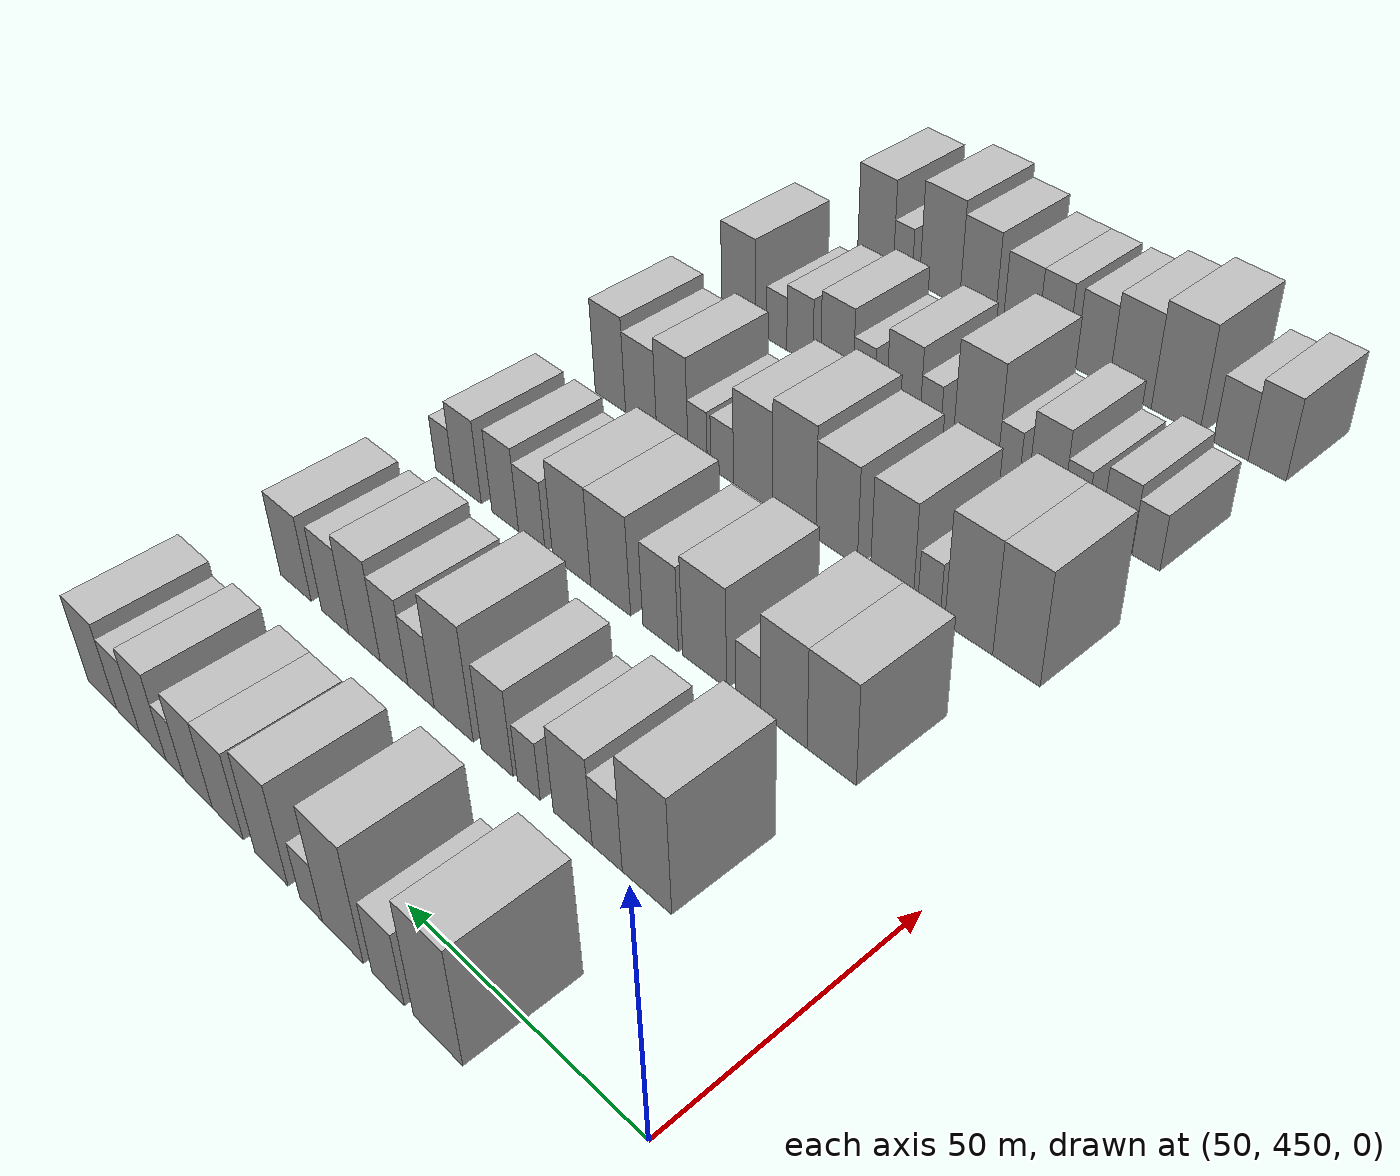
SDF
<sdf version="1.6">
 <world name="default">
  <model name="building_116">
   <static>1</static>
   <pose>50.0000 479.8017 0 0.000000 0.000000 0.000000</pose>
   <link name="link">
    <pose>0 0 12.00 0 0 0</pose>
    <collision name="collision"><geometry><box><size>20.0000 10.5938 24.0000</size></box></geometry></collision>
    <visual name="visual">
     <cast_shadows>0</cast_shadows>
     <geometry><box><size>20.0000 10.5938 24.0000</size></box></geometry>
     <material>
      <script>
       <uri>model://HANNAS_wall/materials/scripts</uri>
       <uri>model://HANNAS_wall/materials/textures</uri>
       <name>vrc/HANNAS_wall</name>
      </script>
     </material>
    </visual>
   </link>
  </model>
  <model name="building_117">
   <static>1</static>
   <pose>50.0000 490.7416 0 0.000000 0.000000 0.000000</pose>
   <link name="link">
    <pose>0 0 7.50 0 0 0</pose>
    <collision name="collision"><geometry><box><size>20.0000 7.2862 15.0000</size></box></geometry></collision>
    <visual name="visual">
     <cast_shadows>0</cast_shadows>
     <geometry><box><size>20.0000 7.2862 15.0000</size></box></geometry>
     <material>
      <script>
       <uri>model://HANNAS_wall/materials/scripts</uri>
       <uri>model://HANNAS_wall/materials/textures</uri>
       <name>vrc/HANNAS_wall</name>
      </script>
     </material>
    </visual>
   </link>
  </model>
  <model name="building_118">
   <static>1</static>
   <pose>50.0000 501.2261 0 0.000000 0.000000 0.000000</pose>
   <link name="link">
    <pose>0 0 12.00 0 0 0</pose>
    <collision name="collision"><geometry><box><size>20.0000 9.6827 24.0000</size></box></geometry></collision>
    <visual name="visual">
     <cast_shadows>0</cast_shadows>
     <geometry><box><size>20.0000 9.6827 24.0000</size></box></geometry>
     <material>
      <script>
       <uri>model://HANNAS_wall/materials/scripts</uri>
       <uri>model://HANNAS_wall/materials/textures</uri>
       <name>vrc/HANNAS_wall</name>
      </script>
     </material>
    </visual>
   </link>
  </model>
  <model name="building_119">
   <static>1</static>
   <pose>50.0000 508.7868 0 0.000000 0.000000 0.000000</pose>
   <link name="link">
    <pose>0 0 6.00 0 0 0</pose>
    <collision name="collision"><geometry><box><size>20.0000 5.4388 12.0000</size></box></geometry></collision>
    <visual name="visual">
     <cast_shadows>0</cast_shadows>
     <geometry><box><size>20.0000 5.4388 12.0000</size></box></geometry>
     <material>
      <script>
       <uri>model://HANNAS_wall/materials/scripts</uri>
       <uri>model://HANNAS_wall/materials/textures</uri>
       <name>vrc/HANNAS_wall</name>
      </script>
     </material>
    </visual>
   </link>
  </model>
  <model name="building_120">
   <static>1</static>
   <pose>50.0000 518.7258 0 0.000000 0.000000 0.000000</pose>
   <link name="link">
    <pose>0 0 10.50 0 0 0</pose>
    <collision name="collision"><geometry><box><size>20.0000 8.4392 21.0000</size></box></geometry></collision>
    <visual name="visual">
     <cast_shadows>0</cast_shadows>
     <geometry><box><size>20.0000 8.4392 21.0000</size></box></geometry>
     <material>
      <script>
       <uri>model://HANNAS_wall/materials/scripts</uri>
       <uri>model://HANNAS_wall/materials/textures</uri>
       <name>vrc/HANNAS_wall</name>
      </script>
     </material>
    </visual>
   </link>
  </model>
  <model name="building_121">
   <static>1</static>
   <pose>50.0000 530.0526 0 0.000000 0.000000 0.000000</pose>
   <link name="link">
    <pose>0 0 9.00 0 0 0</pose>
    <collision name="collision"><geometry><box><size>20.0000 8.2143 18.0000</size></box></geometry></collision>
    <visual name="visual">
     <cast_shadows>0</cast_shadows>
     <geometry><box><size>20.0000 8.2143 18.0000</size></box></geometry>
     <material>
      <script>
       <uri>model://HANNAS_wall/materials/scripts</uri>
       <uri>model://HANNAS_wall/materials/textures</uri>
       <name>vrc/HANNAS_wall</name>
      </script>
     </material>
    </visual>
   </link>
  </model>
  <model name="building_122">
   <static>1</static>
   <pose>50.0000 538.1147 0 0.000000 0.000000 0.000000</pose>
   <link name="link">
    <pose>0 0 9.00 0 0 0</pose>
    <collision name="collision"><geometry><box><size>20.0000 7.9099 18.0000</size></box></geometry></collision>
    <visual name="visual">
     <cast_shadows>0</cast_shadows>
     <geometry><box><size>20.0000 7.9099 18.0000</size></box></geometry>
     <material>
      <script>
       <uri>model://HANNAS_wall/materials/scripts</uri>
       <uri>model://HANNAS_wall/materials/textures</uri>
       <name>vrc/HANNAS_wall</name>
      </script>
     </material>
    </visual>
   </link>
  </model>
  <model name="building_123">
   <static>1</static>
   <pose>50.0000 544.5442 0 0.000000 0.000000 0.000000</pose>
   <link name="link">
    <pose>0 0 6.00 0 0 0</pose>
    <collision name="collision"><geometry><box><size>20.0000 4.9491 12.0000</size></box></geometry></collision>
    <visual name="visual">
     <cast_shadows>0</cast_shadows>
     <geometry><box><size>20.0000 4.9491 12.0000</size></box></geometry>
     <material>
      <script>
       <uri>model://HANNAS_wall/materials/scripts</uri>
       <uri>model://HANNAS_wall/materials/textures</uri>
       <name>vrc/HANNAS_wall</name>
      </script>
     </material>
    </visual>
   </link>
  </model>
  <model name="building_124">
   <static>1</static>
   <pose>50.0000 550.8313 0 0.000000 0.000000 0.000000</pose>
   <link name="link">
    <pose>0 0 9.00 0 0 0</pose>
    <collision name="collision"><geometry><box><size>20.0000 7.6252 18.0000</size></box></geometry></collision>
    <visual name="visual">
     <cast_shadows>0</cast_shadows>
     <geometry><box><size>20.0000 7.6252 18.0000</size></box></geometry>
     <material>
      <script>
       <uri>model://HANNAS_wall/materials/scripts</uri>
       <uri>model://HANNAS_wall/materials/textures</uri>
       <name>vrc/HANNAS_wall</name>
      </script>
     </material>
    </visual>
   </link>
  </model>
  <model name="building_125">
   <static>1</static>
   <pose>50.0000 558.0648 0 0.000000 0.000000 0.000000</pose>
   <link name="link">
    <pose>0 0 7.50 0 0 0</pose>
    <collision name="collision"><geometry><box><size>20.0000 6.8418 15.0000</size></box></geometry></collision>
    <visual name="visual">
     <cast_shadows>0</cast_shadows>
     <geometry><box><size>20.0000 6.8418 15.0000</size></box></geometry>
     <material>
      <script>
       <uri>model://HANNAS_wall/materials/scripts</uri>
       <uri>model://HANNAS_wall/materials/textures</uri>
       <name>vrc/HANNAS_wall</name>
      </script>
     </material>
    </visual>
   </link>
  </model>
  <model name="building_126">
   <static>1</static>
   <pose>50.0000 565.9069 0 0.000000 0.000000 0.000000</pose>
   <link name="link">
    <pose>0 0 9.00 0 0 0</pose>
    <collision name="collision"><geometry><box><size>20.0000 8.8424 18.0000</size></box></geometry></collision>
    <visual name="visual">
     <cast_shadows>0</cast_shadows>
     <geometry><box><size>20.0000 8.8424 18.0000</size></box></geometry>
     <material>
      <script>
       <uri>model://HANNAS_wall/materials/scripts</uri>
       <uri>model://HANNAS_wall/materials/textures</uri>
       <name>vrc/HANNAS_wall</name>
      </script>
     </material>
    </visual>
   </link>
  </model>
  <model name="building_246">
   <static>1</static>
   <pose>85.0000 478.7165 0 0.000000 0.000000 0.000000</pose>
   <link name="link">
    <pose>0 0 12.00 0 0 0</pose>
    <collision name="collision"><geometry><box><size>20.0000 10.3563 24.0000</size></box></geometry></collision>
    <visual name="visual">
     <cast_shadows>0</cast_shadows>
     <geometry><box><size>20.0000 10.3563 24.0000</size></box></geometry>
     <material>
      <script>
       <uri>model://HANNAS_wall/materials/scripts</uri>
       <uri>model://HANNAS_wall/materials/textures</uri>
       <name>vrc/HANNAS_wall</name>
      </script>
     </material>
    </visual>
   </link>
  </model>
  <model name="building_247">
   <static>1</static>
   <pose>85.0000 487.1548 0 0.000000 0.000000 0.000000</pose>
   <link name="link">
    <pose>0 0 7.50 0 0 0</pose>
    <collision name="collision"><geometry><box><size>20.0000 6.5204 15.0000</size></box></geometry></collision>
    <visual name="visual">
     <cast_shadows>0</cast_shadows>
     <geometry><box><size>20.0000 6.5204 15.0000</size></box></geometry>
     <material>
      <script>
       <uri>model://HANNAS_wall/materials/scripts</uri>
       <uri>model://HANNAS_wall/materials/textures</uri>
       <name>vrc/HANNAS_wall</name>
      </script>
     </material>
    </visual>
   </link>
  </model>
  <model name="building_248">
   <static>1</static>
   <pose>85.0000 494.7655 0 0.000000 0.000000 0.000000</pose>
   <link name="link">
    <pose>0 0 9.00 0 0 0</pose>
    <collision name="collision"><geometry><box><size>20.0000 8.7011 18.0000</size></box></geometry></collision>
    <visual name="visual">
     <cast_shadows>0</cast_shadows>
     <geometry><box><size>20.0000 8.7011 18.0000</size></box></geometry>
     <material>
      <script>
       <uri>model://HANNAS_wall/materials/scripts</uri>
       <uri>model://HANNAS_wall/materials/textures</uri>
       <name>vrc/HANNAS_wall</name>
      </script>
     </material>
    </visual>
   </link>
  </model>
  <model name="building_249">
   <static>1</static>
   <pose>85.0000 504.7780 0 0.000000 0.000000 0.000000</pose>
   <link name="link">
    <pose>0 0 6.00 0 0 0</pose>
    <collision name="collision"><geometry><box><size>20.0000 5.3238 12.0000</size></box></geometry></collision>
    <visual name="visual">
     <cast_shadows>0</cast_shadows>
     <geometry><box><size>20.0000 5.3238 12.0000</size></box></geometry>
     <material>
      <script>
       <uri>model://HANNAS_wall/materials/scripts</uri>
       <uri>model://HANNAS_wall/materials/textures</uri>
       <name>vrc/HANNAS_wall</name>
      </script>
     </material>
    </visual>
   </link>
  </model>
  <model name="building_250">
   <static>1</static>
   <pose>85.0000 512.2387 0 0.000000 0.000000 0.000000</pose>
   <link name="link">
    <pose>0 0 9.00 0 0 0</pose>
    <collision name="collision"><geometry><box><size>20.0000 7.5975 18.0000</size></box></geometry></collision>
    <visual name="visual">
     <cast_shadows>0</cast_shadows>
     <geometry><box><size>20.0000 7.5975 18.0000</size></box></geometry>
     <material>
      <script>
       <uri>model://HANNAS_wall/materials/scripts</uri>
       <uri>model://HANNAS_wall/materials/textures</uri>
       <name>vrc/HANNAS_wall</name>
      </script>
     </material>
    </visual>
   </link>
  </model>
  <model name="building_251">
   <static>1</static>
   <pose>85.0000 522.9220 0 0.000000 0.000000 0.000000</pose>
   <link name="link">
    <pose>0 0 12.00 0 0 0</pose>
    <collision name="collision"><geometry><box><size>20.0000 9.7691 24.0000</size></box></geometry></collision>
    <visual name="visual">
     <cast_shadows>0</cast_shadows>
     <geometry><box><size>20.0000 9.7691 24.0000</size></box></geometry>
     <material>
      <script>
       <uri>model://HANNAS_wall/materials/scripts</uri>
       <uri>model://HANNAS_wall/materials/textures</uri>
       <name>vrc/HANNAS_wall</name>
      </script>
     </material>
    </visual>
   </link>
  </model>
  <model name="building_252">
   <static>1</static>
   <pose>85.0000 531.2083 0 0.000000 0.000000 0.000000</pose>
   <link name="link">
    <pose>0 0 7.50 0 0 0</pose>
    <collision name="collision"><geometry><box><size>20.0000 6.8035 15.0000</size></box></geometry></collision>
    <visual name="visual">
     <cast_shadows>0</cast_shadows>
     <geometry><box><size>20.0000 6.8035 15.0000</size></box></geometry>
     <material>
      <script>
       <uri>model://HANNAS_wall/materials/scripts</uri>
       <uri>model://HANNAS_wall/materials/textures</uri>
       <name>vrc/HANNAS_wall</name>
      </script>
     </material>
    </visual>
   </link>
  </model>
  <model name="building_253">
   <static>1</static>
   <pose>85.0000 538.2949 0 0.000000 0.000000 0.000000</pose>
   <link name="link">
    <pose>0 0 9.00 0 0 0</pose>
    <collision name="collision"><geometry><box><size>20.0000 7.3698 18.0000</size></box></geometry></collision>
    <visual name="visual">
     <cast_shadows>0</cast_shadows>
     <geometry><box><size>20.0000 7.3698 18.0000</size></box></geometry>
     <material>
      <script>
       <uri>model://HANNAS_wall/materials/scripts</uri>
       <uri>model://HANNAS_wall/materials/textures</uri>
       <name>vrc/HANNAS_wall</name>
      </script>
     </material>
    </visual>
   </link>
  </model>
  <model name="building_254">
   <static>1</static>
   <pose>85.0000 546.2982 0 0.000000 0.000000 0.000000</pose>
   <link name="link">
    <pose>0 0 10.50 0 0 0</pose>
    <collision name="collision"><geometry><box><size>20.0000 8.6369 21.0000</size></box></geometry></collision>
    <visual name="visual">
     <cast_shadows>0</cast_shadows>
     <geometry><box><size>20.0000 8.6369 21.0000</size></box></geometry>
     <material>
      <script>
       <uri>model://HANNAS_wall/materials/scripts</uri>
       <uri>model://HANNAS_wall/materials/textures</uri>
       <name>vrc/HANNAS_wall</name>
      </script>
     </material>
    </visual>
   </link>
  </model>
  <model name="building_255">
   <static>1</static>
   <pose>85.0000 554.4289 0 0.000000 0.000000 0.000000</pose>
   <link name="link">
    <pose>0 0 9.00 0 0 0</pose>
    <collision name="collision"><geometry><box><size>20.0000 7.6245 18.0000</size></box></geometry></collision>
    <visual name="visual">
     <cast_shadows>0</cast_shadows>
     <geometry><box><size>20.0000 7.6245 18.0000</size></box></geometry>
     <material>
      <script>
       <uri>model://HANNAS_wall/materials/scripts</uri>
       <uri>model://HANNAS_wall/materials/textures</uri>
       <name>vrc/HANNAS_wall</name>
      </script>
     </material>
    </visual>
   </link>
  </model>
  <model name="building_256">
   <static>1</static>
   <pose>85.0000 565.7257 0 0.000000 0.000000 0.000000</pose>
   <link name="link">
    <pose>0 0 9.00 0 0 0</pose>
    <collision name="collision"><geometry><box><size>20.0000 8.9689 18.0000</size></box></geometry></collision>
    <visual name="visual">
     <cast_shadows>0</cast_shadows>
     <geometry><box><size>20.0000 8.9689 18.0000</size></box></geometry>
     <material>
      <script>
       <uri>model://HANNAS_wall/materials/scripts</uri>
       <uri>model://HANNAS_wall/materials/textures</uri>
       <name>vrc/HANNAS_wall</name>
      </script>
     </material>
    </visual>
   </link>
  </model>
  <model name="building_365">
   <static>1</static>
   <pose>120.0000 477.0216 0 0.000000 0.000000 0.000000</pose>
   <link name="link">
    <pose>0 0 10.50 0 0 0</pose>
    <collision name="collision"><geometry><box><size>20.0000 10.2026 21.0000</size></box></geometry></collision>
    <visual name="visual">
     <cast_shadows>0</cast_shadows>
     <geometry><box><size>20.0000 10.2026 21.0000</size></box></geometry>
     <material>
      <script>
       <uri>model://HANNAS_wall/materials/scripts</uri>
       <uri>model://HANNAS_wall/materials/textures</uri>
       <name>vrc/HANNAS_wall</name>
      </script>
     </material>
    </visual>
   </link>
  </model>
  <model name="building_366">
   <static>1</static>
   <pose>120.0000 487.1213 0 0.000000 0.000000 0.000000</pose>
   <link name="link">
    <pose>0 0 10.50 0 0 0</pose>
    <collision name="collision"><geometry><box><size>20.0000 9.9967 21.0000</size></box></geometry></collision>
    <visual name="visual">
     <cast_shadows>0</cast_shadows>
     <geometry><box><size>20.0000 9.9967 21.0000</size></box></geometry>
     <material>
      <script>
       <uri>model://HANNAS_wall/materials/scripts</uri>
       <uri>model://HANNAS_wall/materials/textures</uri>
       <name>vrc/HANNAS_wall</name>
      </script>
     </material>
    </visual>
   </link>
  </model>
  <model name="building_367">
   <static>1</static>
   <pose>120.0000 494.8475 0 0.000000 0.000000 0.000000</pose>
   <link name="link">
    <pose>0 0 6.00 0 0 0</pose>
    <collision name="collision"><geometry><box><size>20.0000 5.4558 12.0000</size></box></geometry></collision>
    <visual name="visual">
     <cast_shadows>0</cast_shadows>
     <geometry><box><size>20.0000 5.4558 12.0000</size></box></geometry>
     <material>
      <script>
       <uri>model://HANNAS_wall/materials/scripts</uri>
       <uri>model://HANNAS_wall/materials/textures</uri>
       <name>vrc/HANNAS_wall</name>
      </script>
     </material>
    </visual>
   </link>
  </model>
  <model name="building_368">
   <static>1</static>
   <pose>120.0000 504.6646 0 0.000000 0.000000 0.000000</pose>
   <link name="link">
    <pose>0 0 10.50 0 0 0</pose>
    <collision name="collision"><geometry><box><size>20.0000 10.1783 21.0000</size></box></geometry></collision>
    <visual name="visual">
     <cast_shadows>0</cast_shadows>
     <geometry><box><size>20.0000 10.1783 21.0000</size></box></geometry>
     <material>
      <script>
       <uri>model://HANNAS_wall/materials/scripts</uri>
       <uri>model://HANNAS_wall/materials/textures</uri>
       <name>vrc/HANNAS_wall</name>
      </script>
     </material>
    </visual>
   </link>
  </model>
  <model name="building_369">
   <static>1</static>
   <pose>120.0000 514.9943 0 0.000000 0.000000 0.000000</pose>
   <link name="link">
    <pose>0 0 9.00 0 0 0</pose>
    <collision name="collision"><geometry><box><size>20.0000 8.4813 18.0000</size></box></geometry></collision>
    <visual name="visual">
     <cast_shadows>0</cast_shadows>
     <geometry><box><size>20.0000 8.4813 18.0000</size></box></geometry>
     <material>
      <script>
       <uri>model://HANNAS_wall/materials/scripts</uri>
       <uri>model://HANNAS_wall/materials/textures</uri>
       <name>vrc/HANNAS_wall</name>
      </script>
     </material>
    </visual>
   </link>
  </model>
  <model name="building_370">
   <static>1</static>
   <pose>120.0000 527.2108 0 0.000000 0.000000 0.000000</pose>
   <link name="link">
    <pose>0 0 10.50 0 0 0</pose>
    <collision name="collision"><geometry><box><size>20.0000 9.9517 21.0000</size></box></geometry></collision>
    <visual name="visual">
     <cast_shadows>0</cast_shadows>
     <geometry><box><size>20.0000 9.9517 21.0000</size></box></geometry>
     <material>
      <script>
       <uri>model://HANNAS_wall/materials/scripts</uri>
       <uri>model://HANNAS_wall/materials/textures</uri>
       <name>vrc/HANNAS_wall</name>
      </script>
     </material>
    </visual>
   </link>
  </model>
  <model name="building_371">
   <static>1</static>
   <pose>120.0000 537.1237 0 0.000000 0.000000 0.000000</pose>
   <link name="link">
    <pose>0 0 10.50 0 0 0</pose>
    <collision name="collision"><geometry><box><size>20.0000 9.8741 21.0000</size></box></geometry></collision>
    <visual name="visual">
     <cast_shadows>0</cast_shadows>
     <geometry><box><size>20.0000 9.8741 21.0000</size></box></geometry>
     <material>
      <script>
       <uri>model://HANNAS_wall/materials/scripts</uri>
       <uri>model://HANNAS_wall/materials/textures</uri>
       <name>vrc/HANNAS_wall</name>
      </script>
     </material>
    </visual>
   </link>
  </model>
  <model name="building_372">
   <static>1</static>
   <pose>120.0000 547.6235 0 0.000000 0.000000 0.000000</pose>
   <link name="link">
    <pose>0 0 7.50 0 0 0</pose>
    <collision name="collision"><geometry><box><size>20.0000 7.1255 15.0000</size></box></geometry></collision>
    <visual name="visual">
     <cast_shadows>0</cast_shadows>
     <geometry><box><size>20.0000 7.1255 15.0000</size></box></geometry>
     <material>
      <script>
       <uri>model://HANNAS_wall/materials/scripts</uri>
       <uri>model://HANNAS_wall/materials/textures</uri>
       <name>vrc/HANNAS_wall</name>
      </script>
     </material>
    </visual>
   </link>
  </model>
  <model name="building_373">
   <static>1</static>
   <pose>120.0000 554.8594 0 0.000000 0.000000 0.000000</pose>
   <link name="link">
    <pose>0 0 9.00 0 0 0</pose>
    <collision name="collision"><geometry><box><size>20.0000 7.3463 18.0000</size></box></geometry></collision>
    <visual name="visual">
     <cast_shadows>0</cast_shadows>
     <geometry><box><size>20.0000 7.3463 18.0000</size></box></geometry>
     <material>
      <script>
       <uri>model://HANNAS_wall/materials/scripts</uri>
       <uri>model://HANNAS_wall/materials/textures</uri>
       <name>vrc/HANNAS_wall</name>
      </script>
     </material>
    </visual>
   </link>
  </model>
  <model name="building_374">
   <static>1</static>
   <pose>120.0000 565.3886 0 0.000000 0.000000 0.000000</pose>
   <link name="link">
    <pose>0 0 9.00 0 0 0</pose>
    <collision name="collision"><geometry><box><size>20.0000 7.7123 18.0000</size></box></geometry></collision>
    <visual name="visual">
     <cast_shadows>0</cast_shadows>
     <geometry><box><size>20.0000 7.7123 18.0000</size></box></geometry>
     <material>
      <script>
       <uri>model://HANNAS_wall/materials/scripts</uri>
       <uri>model://HANNAS_wall/materials/textures</uri>
       <name>vrc/HANNAS_wall</name>
      </script>
     </material>
    </visual>
   </link>
  </model>
  <model name="building_375">
   <static>1</static>
   <pose>120.0000 571.8948 0 0.000000 0.000000 0.000000</pose>
   <link name="link">
    <pose>0 0 6.00 0 0 0</pose>
    <collision name="collision"><geometry><box><size>20.0000 5.2999 12.0000</size></box></geometry></collision>
    <visual name="visual">
     <cast_shadows>0</cast_shadows>
     <geometry><box><size>20.0000 5.2999 12.0000</size></box></geometry>
     <material>
      <script>
       <uri>model://HANNAS_wall/materials/scripts</uri>
       <uri>model://HANNAS_wall/materials/textures</uri>
       <name>vrc/HANNAS_wall</name>
      </script>
     </material>
    </visual>
   </link>
  </model>
  <model name="building_484">
   <static>1</static>
   <pose>155.0000 470.7309 0 0.000000 0.000000 0.000000</pose>
   <link name="link">
    <pose>0 0 12.00 0 0 0</pose>
    <collision name="collision"><geometry><box><size>20.0000 9.6458 24.0000</size></box></geometry></collision>
    <visual name="visual">
     <cast_shadows>0</cast_shadows>
     <geometry><box><size>20.0000 9.6458 24.0000</size></box></geometry>
     <material>
      <script>
       <uri>model://HANNAS_wall/materials/scripts</uri>
       <uri>model://HANNAS_wall/materials/textures</uri>
       <name>vrc/HANNAS_wall</name>
      </script>
     </material>
    </visual>
   </link>
  </model>
  <model name="building_485">
   <static>1</static>
   <pose>155.0000 480.6057 0 0.000000 0.000000 0.000000</pose>
   <link name="link">
    <pose>0 0 12.00 0 0 0</pose>
    <collision name="collision"><geometry><box><size>20.0000 10.1037 24.0000</size></box></geometry></collision>
    <visual name="visual">
     <cast_shadows>0</cast_shadows>
     <geometry><box><size>20.0000 10.1037 24.0000</size></box></geometry>
     <material>
      <script>
       <uri>model://HANNAS_wall/materials/scripts</uri>
       <uri>model://HANNAS_wall/materials/textures</uri>
       <name>vrc/HANNAS_wall</name>
      </script>
     </material>
    </visual>
   </link>
  </model>
  <model name="building_486">
   <static>1</static>
   <pose>155.0000 489.0851 0 0.000000 0.000000 0.000000</pose>
   <link name="link">
    <pose>0 0 6.00 0 0 0</pose>
    <collision name="collision"><geometry><box><size>20.0000 4.8550 12.0000</size></box></geometry></collision>
    <visual name="visual">
     <cast_shadows>0</cast_shadows>
     <geometry><box><size>20.0000 4.8550 12.0000</size></box></geometry>
     <material>
      <script>
       <uri>model://HANNAS_wall/materials/scripts</uri>
       <uri>model://HANNAS_wall/materials/textures</uri>
       <name>vrc/HANNAS_wall</name>
      </script>
     </material>
    </visual>
   </link>
  </model>
  <model name="building_487">
   <static>1</static>
   <pose>155.0000 497.2928 0 0.000000 0.000000 0.000000</pose>
   <link name="link">
    <pose>0 0 10.50 0 0 0</pose>
    <collision name="collision"><geometry><box><size>20.0000 9.5604 21.0000</size></box></geometry></collision>
    <visual name="visual">
     <cast_shadows>0</cast_shadows>
     <geometry><box><size>20.0000 9.5604 21.0000</size></box></geometry>
     <material>
      <script>
       <uri>model://HANNAS_wall/materials/scripts</uri>
       <uri>model://HANNAS_wall/materials/textures</uri>
       <name>vrc/HANNAS_wall</name>
      </script>
     </material>
    </visual>
   </link>
  </model>
  <model name="building_488">
   <static>1</static>
   <pose>155.0000 509.9212 0 0.000000 0.000000 0.000000</pose>
   <link name="link">
    <pose>0 0 10.50 0 0 0</pose>
    <collision name="collision"><geometry><box><size>20.0000 9.6963 21.0000</size></box></geometry></collision>
    <visual name="visual">
     <cast_shadows>0</cast_shadows>
     <geometry><box><size>20.0000 9.6963 21.0000</size></box></geometry>
     <material>
      <script>
       <uri>model://HANNAS_wall/materials/scripts</uri>
       <uri>model://HANNAS_wall/materials/textures</uri>
       <name>vrc/HANNAS_wall</name>
      </script>
     </material>
    </visual>
   </link>
  </model>
  <model name="building_489">
   <static>1</static>
   <pose>155.0000 519.9702 0 0.000000 0.000000 0.000000</pose>
   <link name="link">
    <pose>0 0 12.00 0 0 0</pose>
    <collision name="collision"><geometry><box><size>20.0000 10.4017 24.0000</size></box></geometry></collision>
    <visual name="visual">
     <cast_shadows>0</cast_shadows>
     <geometry><box><size>20.0000 10.4017 24.0000</size></box></geometry>
     <material>
      <script>
       <uri>model://HANNAS_wall/materials/scripts</uri>
       <uri>model://HANNAS_wall/materials/textures</uri>
       <name>vrc/HANNAS_wall</name>
      </script>
     </material>
    </visual>
   </link>
  </model>
  <model name="building_490">
   <static>1</static>
   <pose>155.0000 530.0505 0 0.000000 0.000000 0.000000</pose>
   <link name="link">
    <pose>0 0 10.50 0 0 0</pose>
    <collision name="collision"><geometry><box><size>20.0000 9.7589 21.0000</size></box></geometry></collision>
    <visual name="visual">
     <cast_shadows>0</cast_shadows>
     <geometry><box><size>20.0000 9.7589 21.0000</size></box></geometry>
     <material>
      <script>
       <uri>model://HANNAS_wall/materials/scripts</uri>
       <uri>model://HANNAS_wall/materials/textures</uri>
       <name>vrc/HANNAS_wall</name>
      </script>
     </material>
    </visual>
   </link>
  </model>
  <model name="building_491">
   <static>1</static>
   <pose>155.0000 537.8232 0 0.000000 0.000000 0.000000</pose>
   <link name="link">
    <pose>0 0 6.00 0 0 0</pose>
    <collision name="collision"><geometry><box><size>20.0000 5.7866 12.0000</size></box></geometry></collision>
    <visual name="visual">
     <cast_shadows>0</cast_shadows>
     <geometry><box><size>20.0000 5.7866 12.0000</size></box></geometry>
     <material>
      <script>
       <uri>model://HANNAS_wall/materials/scripts</uri>
       <uri>model://HANNAS_wall/materials/textures</uri>
       <name>vrc/HANNAS_wall</name>
      </script>
     </material>
    </visual>
   </link>
  </model>
  <model name="building_492">
   <static>1</static>
   <pose>155.0000 544.2220 0 0.000000 0.000000 0.000000</pose>
   <link name="link">
    <pose>0 0 6.00 0 0 0</pose>
    <collision name="collision"><geometry><box><size>20.0000 5.0110 12.0000</size></box></geometry></collision>
    <visual name="visual">
     <cast_shadows>0</cast_shadows>
     <geometry><box><size>20.0000 5.0110 12.0000</size></box></geometry>
     <material>
      <script>
       <uri>model://HANNAS_wall/materials/scripts</uri>
       <uri>model://HANNAS_wall/materials/textures</uri>
       <name>vrc/HANNAS_wall</name>
      </script>
     </material>
    </visual>
   </link>
  </model>
  <model name="building_493">
   <static>1</static>
   <pose>155.0000 550.9652 0 0.000000 0.000000 0.000000</pose>
   <link name="link">
    <pose>0 0 10.50 0 0 0</pose>
    <collision name="collision"><geometry><box><size>20.0000 8.4754 21.0000</size></box></geometry></collision>
    <visual name="visual">
     <cast_shadows>0</cast_shadows>
     <geometry><box><size>20.0000 8.4754 21.0000</size></box></geometry>
     <material>
      <script>
       <uri>model://HANNAS_wall/materials/scripts</uri>
       <uri>model://HANNAS_wall/materials/textures</uri>
       <name>vrc/HANNAS_wall</name>
      </script>
     </material>
    </visual>
   </link>
  </model>
  <model name="building_494">
   <static>1</static>
   <pose>155.0000 559.4999 0 0.000000 0.000000 0.000000</pose>
   <link name="link">
    <pose>0 0 9.00 0 0 0</pose>
    <collision name="collision"><geometry><box><size>20.0000 8.5940 18.0000</size></box></geometry></collision>
    <visual name="visual">
     <cast_shadows>0</cast_shadows>
     <geometry><box><size>20.0000 8.5940 18.0000</size></box></geometry>
     <material>
      <script>
       <uri>model://HANNAS_wall/materials/scripts</uri>
       <uri>model://HANNAS_wall/materials/textures</uri>
       <name>vrc/HANNAS_wall</name>
      </script>
     </material>
    </visual>
   </link>
  </model>
  <model name="building_495">
   <static>1</static>
   <pose>155.0000 568.0739 0 0.000000 0.000000 0.000000</pose>
   <link name="link">
    <pose>0 0 10.50 0 0 0</pose>
    <collision name="collision"><geometry><box><size>20.0000 8.5540 21.0000</size></box></geometry></collision>
    <visual name="visual">
     <cast_shadows>0</cast_shadows>
     <geometry><box><size>20.0000 8.5540 21.0000</size></box></geometry>
     <material>
      <script>
       <uri>model://HANNAS_wall/materials/scripts</uri>
       <uri>model://HANNAS_wall/materials/textures</uri>
       <name>vrc/HANNAS_wall</name>
      </script>
     </material>
    </visual>
   </link>
  </model>
  <model name="building_605">
   <static>1</static>
   <pose>190.0000 471.9192 0 0.000000 0.000000 0.000000</pose>
   <link name="link">
    <pose>0 0 6.00 0 0 0</pose>
    <collision name="collision"><geometry><box><size>20.0000 5.7739 12.0000</size></box></geometry></collision>
    <visual name="visual">
     <cast_shadows>0</cast_shadows>
     <geometry><box><size>20.0000 5.7739 12.0000</size></box></geometry>
     <material>
      <script>
       <uri>model://HANNAS_wall/materials/scripts</uri>
       <uri>model://HANNAS_wall/materials/textures</uri>
       <name>vrc/HANNAS_wall</name>
      </script>
     </material>
    </visual>
   </link>
  </model>
  <model name="building_606">
   <static>1</static>
   <pose>190.0000 478.1718 0 0.000000 0.000000 0.000000</pose>
   <link name="link">
    <pose>0 0 7.50 0 0 0</pose>
    <collision name="collision"><geometry><box><size>20.0000 6.7312 15.0000</size></box></geometry></collision>
    <visual name="visual">
     <cast_shadows>0</cast_shadows>
     <geometry><box><size>20.0000 6.7312 15.0000</size></box></geometry>
     <material>
      <script>
       <uri>model://HANNAS_wall/materials/scripts</uri>
       <uri>model://HANNAS_wall/materials/textures</uri>
       <name>vrc/HANNAS_wall</name>
      </script>
     </material>
    </visual>
   </link>
  </model>
  <model name="building_607">
   <static>1</static>
   <pose>190.0000 487.1151 0 0.000000 0.000000 0.000000</pose>
   <link name="link">
    <pose>0 0 6.00 0 0 0</pose>
    <collision name="collision"><geometry><box><size>20.0000 5.1555 12.0000</size></box></geometry></collision>
    <visual name="visual">
     <cast_shadows>0</cast_shadows>
     <geometry><box><size>20.0000 5.1555 12.0000</size></box></geometry>
     <material>
      <script>
       <uri>model://HANNAS_wall/materials/scripts</uri>
       <uri>model://HANNAS_wall/materials/textures</uri>
       <name>vrc/HANNAS_wall</name>
      </script>
     </material>
    </visual>
   </link>
  </model>
  <model name="building_608">
   <static>1</static>
   <pose>190.0000 493.5607 0 0.000000 0.000000 0.000000</pose>
   <link name="link">
    <pose>0 0 9.00 0 0 0</pose>
    <collision name="collision"><geometry><box><size>20.0000 7.7357 18.0000</size></box></geometry></collision>
    <visual name="visual">
     <cast_shadows>0</cast_shadows>
     <geometry><box><size>20.0000 7.7357 18.0000</size></box></geometry>
     <material>
      <script>
       <uri>model://HANNAS_wall/materials/scripts</uri>
       <uri>model://HANNAS_wall/materials/textures</uri>
       <name>vrc/HANNAS_wall</name>
      </script>
     </material>
    </visual>
   </link>
  </model>
  <model name="building_609">
   <static>1</static>
   <pose>190.0000 501.9232 0 0.000000 0.000000 0.000000</pose>
   <link name="link">
    <pose>0 0 6.00 0 0 0</pose>
    <collision name="collision"><geometry><box><size>20.0000 4.9892 12.0000</size></box></geometry></collision>
    <visual name="visual">
     <cast_shadows>0</cast_shadows>
     <geometry><box><size>20.0000 4.9892 12.0000</size></box></geometry>
     <material>
      <script>
       <uri>model://HANNAS_wall/materials/scripts</uri>
       <uri>model://HANNAS_wall/materials/textures</uri>
       <name>vrc/HANNAS_wall</name>
      </script>
     </material>
    </visual>
   </link>
  </model>
  <model name="building_610">
   <static>1</static>
   <pose>190.0000 509.6131 0 0.000000 0.000000 0.000000</pose>
   <link name="link">
    <pose>0 0 12.00 0 0 0</pose>
    <collision name="collision"><geometry><box><size>20.0000 10.3906 24.0000</size></box></geometry></collision>
    <visual name="visual">
     <cast_shadows>0</cast_shadows>
     <geometry><box><size>20.0000 10.3906 24.0000</size></box></geometry>
     <material>
      <script>
       <uri>model://HANNAS_wall/materials/scripts</uri>
       <uri>model://HANNAS_wall/materials/textures</uri>
       <name>vrc/HANNAS_wall</name>
      </script>
     </material>
    </visual>
   </link>
  </model>
  <model name="building_611">
   <static>1</static>
   <pose>190.0000 520.3193 0 0.000000 0.000000 0.000000</pose>
   <link name="link">
    <pose>0 0 6.00 0 0 0</pose>
    <collision name="collision"><geometry><box><size>20.0000 5.0217 12.0000</size></box></geometry></collision>
    <visual name="visual">
     <cast_shadows>0</cast_shadows>
     <geometry><box><size>20.0000 5.0217 12.0000</size></box></geometry>
     <material>
      <script>
       <uri>model://HANNAS_wall/materials/scripts</uri>
       <uri>model://HANNAS_wall/materials/textures</uri>
       <name>vrc/HANNAS_wall</name>
      </script>
     </material>
    </visual>
   </link>
  </model>
  <model name="building_612">
   <static>1</static>
   <pose>190.0000 526.9581 0 0.000000 0.000000 0.000000</pose>
   <link name="link">
    <pose>0 0 9.00 0 0 0</pose>
    <collision name="collision"><geometry><box><size>20.0000 8.2559 18.0000</size></box></geometry></collision>
    <visual name="visual">
     <cast_shadows>0</cast_shadows>
     <geometry><box><size>20.0000 8.2559 18.0000</size></box></geometry>
     <material>
      <script>
       <uri>model://HANNAS_wall/materials/scripts</uri>
       <uri>model://HANNAS_wall/materials/textures</uri>
       <name>vrc/HANNAS_wall</name>
      </script>
     </material>
    </visual>
   </link>
  </model>
  <model name="building_613">
   <static>1</static>
   <pose>190.0000 536.8003 0 0.000000 0.000000 0.000000</pose>
   <link name="link">
    <pose>0 0 6.00 0 0 0</pose>
    <collision name="collision"><geometry><box><size>20.0000 5.4285 12.0000</size></box></geometry></collision>
    <visual name="visual">
     <cast_shadows>0</cast_shadows>
     <geometry><box><size>20.0000 5.4285 12.0000</size></box></geometry>
     <material>
      <script>
       <uri>model://HANNAS_wall/materials/scripts</uri>
       <uri>model://HANNAS_wall/materials/textures</uri>
       <name>vrc/HANNAS_wall</name>
      </script>
     </material>
    </visual>
   </link>
  </model>
  <model name="building_614">
   <static>1</static>
   <pose>190.0000 543.7508 0 0.000000 0.000000 0.000000</pose>
   <link name="link">
    <pose>0 0 9.00 0 0 0</pose>
    <collision name="collision"><geometry><box><size>20.0000 8.4724 18.0000</size></box></geometry></collision>
    <visual name="visual">
     <cast_shadows>0</cast_shadows>
     <geometry><box><size>20.0000 8.4724 18.0000</size></box></geometry>
     <material>
      <script>
       <uri>model://HANNAS_wall/materials/scripts</uri>
       <uri>model://HANNAS_wall/materials/textures</uri>
       <name>vrc/HANNAS_wall</name>
      </script>
     </material>
    </visual>
   </link>
  </model>
  <model name="building_615">
   <static>1</static>
   <pose>190.0000 553.4998 0 0.000000 0.000000 0.000000</pose>
   <link name="link">
    <pose>0 0 7.50 0 0 0</pose>
    <collision name="collision"><geometry><box><size>20.0000 7.0254 15.0000</size></box></geometry></collision>
    <visual name="visual">
     <cast_shadows>0</cast_shadows>
     <geometry><box><size>20.0000 7.0254 15.0000</size></box></geometry>
     <material>
      <script>
       <uri>model://HANNAS_wall/materials/scripts</uri>
       <uri>model://HANNAS_wall/materials/textures</uri>
       <name>vrc/HANNAS_wall</name>
      </script>
     </material>
    </visual>
   </link>
  </model>
  <model name="building_616">
   <static>1</static>
   <pose>190.0000 559.7951 0 0.000000 0.000000 0.000000</pose>
   <link name="link">
    <pose>0 0 6.00 0 0 0</pose>
    <collision name="collision"><geometry><box><size>20.0000 5.5652 12.0000</size></box></geometry></collision>
    <visual name="visual">
     <cast_shadows>0</cast_shadows>
     <geometry><box><size>20.0000 5.5652 12.0000</size></box></geometry>
     <material>
      <script>
       <uri>model://HANNAS_wall/materials/scripts</uri>
       <uri>model://HANNAS_wall/materials/textures</uri>
       <name>vrc/HANNAS_wall</name>
      </script>
     </material>
    </visual>
   </link>
  </model>
  <model name="building_617">
   <static>1</static>
   <pose>190.0000 570.3354 0 0.000000 0.000000 0.000000</pose>
   <link name="link">
    <pose>0 0 10.50 0 0 0</pose>
    <collision name="collision"><geometry><box><size>20.0000 9.5154 21.0000</size></box></geometry></collision>
    <visual name="visual">
     <cast_shadows>0</cast_shadows>
     <geometry><box><size>20.0000 9.5154 21.0000</size></box></geometry>
     <material>
      <script>
       <uri>model://HANNAS_wall/materials/scripts</uri>
       <uri>model://HANNAS_wall/materials/textures</uri>
       <name>vrc/HANNAS_wall</name>
      </script>
     </material>
    </visual>
   </link>
  </model>
  <model name="building_739">
   <static>1</static>
   <pose>225.0000 471.6986 0 0.000000 0.000000 0.000000</pose>
   <link name="link">
    <pose>0 0 9.00 0 0 0</pose>
    <collision name="collision"><geometry><box><size>20.0000 7.9853 18.0000</size></box></geometry></collision>
    <visual name="visual">
     <cast_shadows>0</cast_shadows>
     <geometry><box><size>20.0000 7.9853 18.0000</size></box></geometry>
     <material>
      <script>
       <uri>model://HANNAS_wall/materials/scripts</uri>
       <uri>model://HANNAS_wall/materials/textures</uri>
       <name>vrc/HANNAS_wall</name>
      </script>
     </material>
    </visual>
   </link>
  </model>
  <model name="building_740">
   <static>1</static>
   <pose>225.0000 479.4359 0 0.000000 0.000000 0.000000</pose>
   <link name="link">
    <pose>0 0 7.50 0 0 0</pose>
    <collision name="collision"><geometry><box><size>20.0000 7.4892 15.0000</size></box></geometry></collision>
    <visual name="visual">
     <cast_shadows>0</cast_shadows>
     <geometry><box><size>20.0000 7.4892 15.0000</size></box></geometry>
     <material>
      <script>
       <uri>model://HANNAS_wall/materials/scripts</uri>
       <uri>model://HANNAS_wall/materials/textures</uri>
       <name>vrc/HANNAS_wall</name>
      </script>
     </material>
    </visual>
   </link>
  </model>
  <model name="building_741">
   <static>1</static>
   <pose>225.0000 491.5738 0 0.000000 0.000000 0.000000</pose>
   <link name="link">
    <pose>0 0 12.00 0 0 0</pose>
    <collision name="collision"><geometry><box><size>20.0000 10.7867 24.0000</size></box></geometry></collision>
    <visual name="visual">
     <cast_shadows>0</cast_shadows>
     <geometry><box><size>20.0000 10.7867 24.0000</size></box></geometry>
     <material>
      <script>
       <uri>model://HANNAS_wall/materials/scripts</uri>
       <uri>model://HANNAS_wall/materials/textures</uri>
       <name>vrc/HANNAS_wall</name>
      </script>
     </material>
    </visual>
   </link>
  </model>
  <model name="building_742">
   <static>1</static>
   <pose>225.0000 501.8610 0 0.000000 0.000000 0.000000</pose>
   <link name="link">
    <pose>0 0 10.50 0 0 0</pose>
    <collision name="collision"><geometry><box><size>20.0000 9.7878 21.0000</size></box></geometry></collision>
    <visual name="visual">
     <cast_shadows>0</cast_shadows>
     <geometry><box><size>20.0000 9.7878 21.0000</size></box></geometry>
     <material>
      <script>
       <uri>model://HANNAS_wall/materials/scripts</uri>
       <uri>model://HANNAS_wall/materials/textures</uri>
       <name>vrc/HANNAS_wall</name>
      </script>
     </material>
    </visual>
   </link>
  </model>
  <model name="building_743">
   <static>1</static>
   <pose>225.0000 510.7479 0 0.000000 0.000000 0.000000</pose>
   <link name="link">
    <pose>0 0 9.00 0 0 0</pose>
    <collision name="collision"><geometry><box><size>20.0000 7.9860 18.0000</size></box></geometry></collision>
    <visual name="visual">
     <cast_shadows>0</cast_shadows>
     <geometry><box><size>20.0000 7.9860 18.0000</size></box></geometry>
     <material>
      <script>
       <uri>model://HANNAS_wall/materials/scripts</uri>
       <uri>model://HANNAS_wall/materials/textures</uri>
       <name>vrc/HANNAS_wall</name>
      </script>
     </material>
    </visual>
   </link>
  </model>
  <model name="building_744">
   <static>1</static>
   <pose>225.0000 520.4284 0 0.000000 0.000000 0.000000</pose>
   <link name="link">
    <pose>0 0 9.00 0 0 0</pose>
    <collision name="collision"><geometry><box><size>20.0000 7.3750 18.0000</size></box></geometry></collision>
    <visual name="visual">
     <cast_shadows>0</cast_shadows>
     <geometry><box><size>20.0000 7.3750 18.0000</size></box></geometry>
     <material>
      <script>
       <uri>model://HANNAS_wall/materials/scripts</uri>
       <uri>model://HANNAS_wall/materials/textures</uri>
       <name>vrc/HANNAS_wall</name>
      </script>
     </material>
    </visual>
   </link>
  </model>
  <model name="building_745">
   <static>1</static>
   <pose>225.0000 528.3838 0 0.000000 0.000000 0.000000</pose>
   <link name="link">
    <pose>0 0 9.00 0 0 0</pose>
    <collision name="collision"><geometry><box><size>20.0000 8.5357 18.0000</size></box></geometry></collision>
    <visual name="visual">
     <cast_shadows>0</cast_shadows>
     <geometry><box><size>20.0000 8.5357 18.0000</size></box></geometry>
     <material>
      <script>
       <uri>model://HANNAS_wall/materials/scripts</uri>
       <uri>model://HANNAS_wall/materials/textures</uri>
       <name>vrc/HANNAS_wall</name>
      </script>
     </material>
    </visual>
   </link>
  </model>
  <model name="building_746">
   <static>1</static>
   <pose>225.0000 539.2450 0 0.000000 0.000000 0.000000</pose>
   <link name="link">
    <pose>0 0 10.50 0 0 0</pose>
    <collision name="collision"><geometry><box><size>20.0000 9.1868 21.0000</size></box></geometry></collision>
    <visual name="visual">
     <cast_shadows>0</cast_shadows>
     <geometry><box><size>20.0000 9.1868 21.0000</size></box></geometry>
     <material>
      <script>
       <uri>model://HANNAS_wall/materials/scripts</uri>
       <uri>model://HANNAS_wall/materials/textures</uri>
       <name>vrc/HANNAS_wall</name>
      </script>
     </material>
    </visual>
   </link>
  </model>
  <model name="building_747">
   <static>1</static>
   <pose>225.0000 549.1491 0 0.000000 0.000000 0.000000</pose>
   <link name="link">
    <pose>0 0 12.00 0 0 0</pose>
    <collision name="collision"><geometry><box><size>20.0000 10.6213 24.0000</size></box></geometry></collision>
    <visual name="visual">
     <cast_shadows>0</cast_shadows>
     <geometry><box><size>20.0000 10.6213 24.0000</size></box></geometry>
     <material>
      <script>
       <uri>model://HANNAS_wall/materials/scripts</uri>
       <uri>model://HANNAS_wall/materials/textures</uri>
       <name>vrc/HANNAS_wall</name>
      </script>
     </material>
    </visual>
   </link>
  </model>
  <model name="building_748">
   <static>1</static>
   <pose>225.0000 559.0412 0 0.000000 0.000000 0.000000</pose>
   <link name="link">
    <pose>0 0 6.00 0 0 0</pose>
    <collision name="collision"><geometry><box><size>20.0000 5.1629 12.0000</size></box></geometry></collision>
    <visual name="visual">
     <cast_shadows>0</cast_shadows>
     <geometry><box><size>20.0000 5.1629 12.0000</size></box></geometry>
     <material>
      <script>
       <uri>model://HANNAS_wall/materials/scripts</uri>
       <uri>model://HANNAS_wall/materials/textures</uri>
       <name>vrc/HANNAS_wall</name>
      </script>
     </material>
    </visual>
   </link>
  </model>
  <model name="building_749">
   <static>1</static>
   <pose>225.0000 566.6012 0 0.000000 0.000000 0.000000</pose>
   <link name="link">
    <pose>0 0 10.50 0 0 0</pose>
    <collision name="collision"><geometry><box><size>20.0000 9.9569 21.0000</size></box></geometry></collision>
    <visual name="visual">
     <cast_shadows>0</cast_shadows>
     <geometry><box><size>20.0000 9.9569 21.0000</size></box></geometry>
     <material>
      <script>
       <uri>model://HANNAS_wall/materials/scripts</uri>
       <uri>model://HANNAS_wall/materials/textures</uri>
       <name>vrc/HANNAS_wall</name>
      </script>
     </material>
    </visual>
   </link>
  </model>
 </world>
</sdf>
